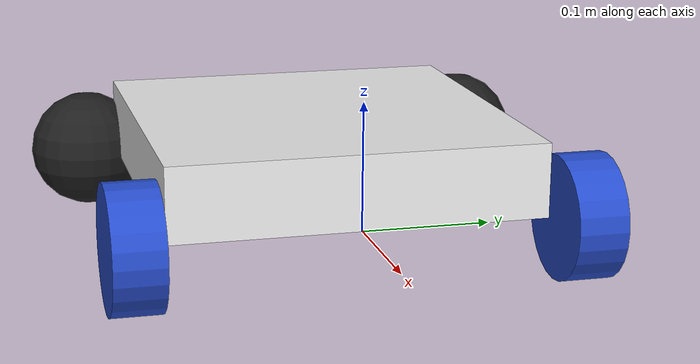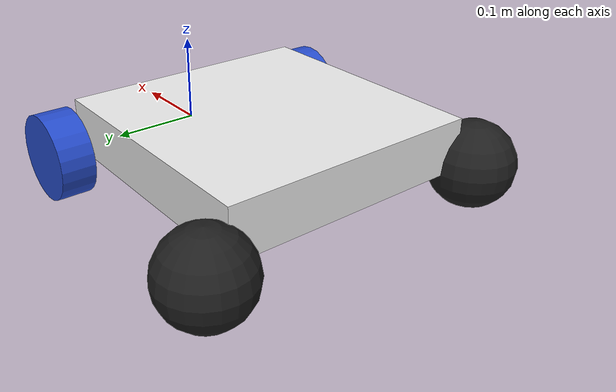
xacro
<?xml version="1.0"?>
<robot xmlns:xacro="http://www.ros.org/wiki/xacro">

    <xacro:include filename="colors.xacro" />
    <xacro:include filename="inertial_macros.xacro" />

    <link name="base_link">
    </link>

    <joint name="chassis_joint" type="fixed">
    <parent link="base_link"/>
    <child link="chassis"/>
    <origin xyz="0 0 0"/>
    </joint>

    <link name="chassis">
        <visual>
            <!-- origin z value is chassis height/2 -->
            <origin xyz="-0.15 0 0.03" rpy="0 0 0"/>
            <geometry>
                <!-- size in meters length, width (between drive wheels), hegiht -->
                <box size="0.3 0.3 0.06"/>
            </geometry>
            <material name="white"/>
        </visual>
        <collision>
            <!-- origin z value is chassis height/2 -->
            <origin xyz="-0.15 0 0.03" rpy="0 0 0"/>
            <geometry>
                <!-- size in meters length, width (between drive wheels), hegiht -->
                <box size="0.3 0.3 0.06"/>
            </geometry>
        </collision>
        <xacro:inertial_box mass="0.5" x="0.3" y="0.3" z="0.06">
            <origin xyz="-0.15 0 0.3" rpy="0 0 0"/>
        </xacro:inertial_box>
    </link>
    <gazebo reference="chassis">
        <material>Gazebo/White</material>
    </gazebo>

    <!-- LEFT WHEEL -->

    <joint name="left_wheel_joint" type="continuous">
        <parent link="base_link"/>
        <child link="left_wheel"/>
        <origin xyz="0 0.175 0" rpy="-${pi/2} 0 0"/>
        <axis xyz="0 0 1"/>
    </joint>

    <link name="left_wheel">
        <visual>
            <geometry>
                <cylinder length="0.04" radius="0.05" />/>
            </geometry>
            <material name="blue"/>
        </visual>
        <collision>
            <geometry>
                <cylinder length="0.04" radius="0.05" />/>
            </geometry>
        </collision>
        <xacro:inertial_cylinder mass="0.1" length="0.04" radius="0.05">
            <origin xyz="0 0 0" rpy="0 0 0"/>
        </xacro:inertial_cylinder>
    </link>
    <gazebo reference="left_wheel">
        <material>Gazebo/Blue</material>
    </gazebo>

    <!-- Right WHEEL -->

    <joint name="right_wheel_joint" type="continuous">
        <parent link="base_link"/>
        <child link="right_wheel"/>
        <origin xyz="0 -0.175 0" rpy="${pi/2} 0 0"/>
        <axis xyz="0 0 -1"/>
    </joint>

    <link name="right_wheel">
        <visual>
            <geometry>
                <cylinder length="0.04" radius="0.05" />/>
            </geometry>
            <material name="blue"/>
        </visual>
        <collision>
            <geometry>
                <cylinder length="0.04" radius="0.05" />/>
            </geometry>
        </collision>
        <xacro:inertial_cylinder mass="0.1" length="0.04" radius="0.05">
            <origin xyz="0 0 0" rpy="0 0 0"/>
        </xacro:inertial_cylinder>
    </link>
    <gazebo reference="right_wheel">
        <material>Gazebo/Blue</material>
    </gazebo>

    <!-- LEFT CASTER WHEEL -->

    <joint name="left_caster_wheel_joint" type="fixed">
        <parent link="chassis"/>
        <child link="left_caster_wheel"/>
        <origin xyz="-0.3 0.175 0" rpy="0 0 0"/>
    </joint>

    <link name="left_caster_wheel">
        <visual>
            <geometry>
                <sphere radius="0.05" />
            </geometry>
            <material name="black"/>
        </visual>
        <collision>
            <geometry>
                <sphere radius="0.05" />
            </geometry>
        </collision>
        <xacro:inertial_sphere mass="0.1" radius="0.05">
            <origin xyz="0 0 0" rpy="0 0 0"/>
        </xacro:inertial_sphere>
    </link>
    <gazebo reference="left_caster_wheel">
        <material>Gazebo/Black</material>
        <mu1 value="0.001"/>
        <mu2 value="0.001"/>
    </gazebo>

    <!-- RIGHT CASTER WHEEL -->

    <joint name="right_caster_wheel_joint" type="fixed">
        <parent link="chassis"/>
        <child link="right_caster_wheel"/>
        <origin xyz="-0.3 -0.175 0" rpy="0 0 0"/>
    </joint>

    <link name="right_caster_wheel">
        <visual>
            <geometry>
                <sphere radius="0.05" />
            </geometry>+++
            <material name="black"/>
        </visual>
        <collision>
            <geometry>
                <sphere radius="0.05" />
            </geometry>
        </collision>
        <xacro:inertial_sphere mass="0.1" radius="0.05">
            <origin xyz="0 0 0" rpy="0 0 0"/>
        </xacro:inertial_sphere>
    </link>
    <gazebo reference="right_caster_wheel">
        <material>Gazebo/Black</material>
        <mu1 value="0.001"/>
        <mu2 value="0.001"/>
    </gazebo>

</robot>
